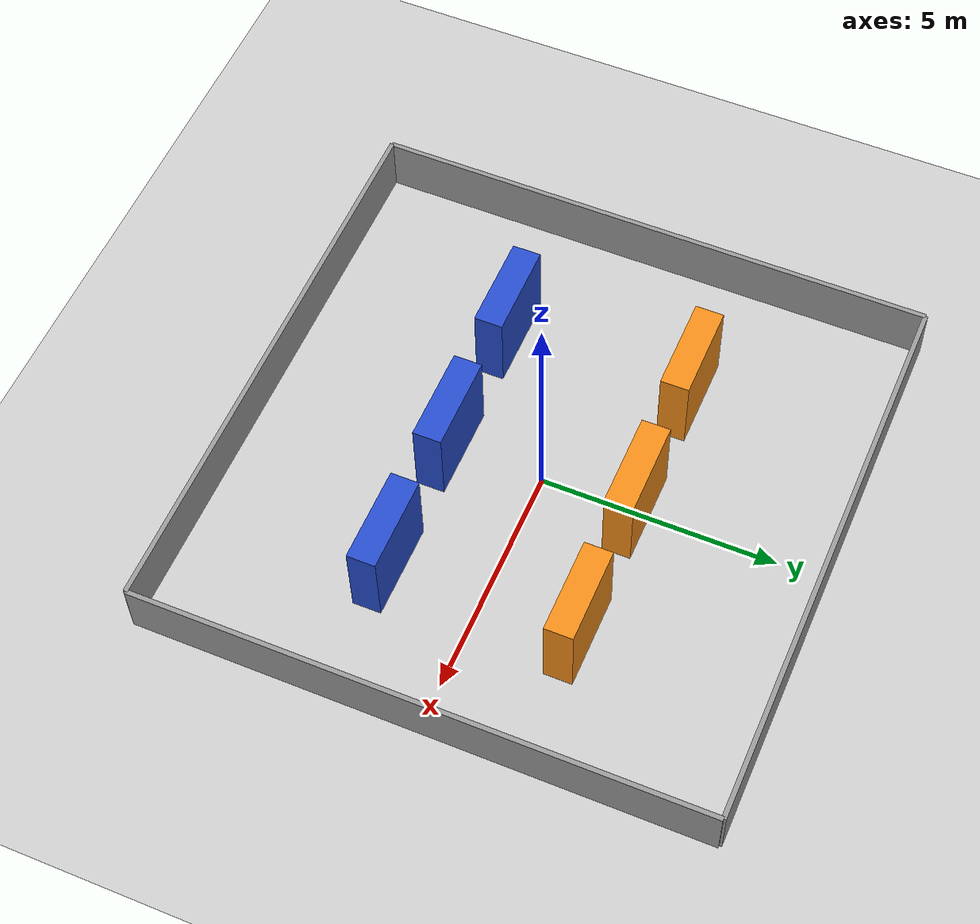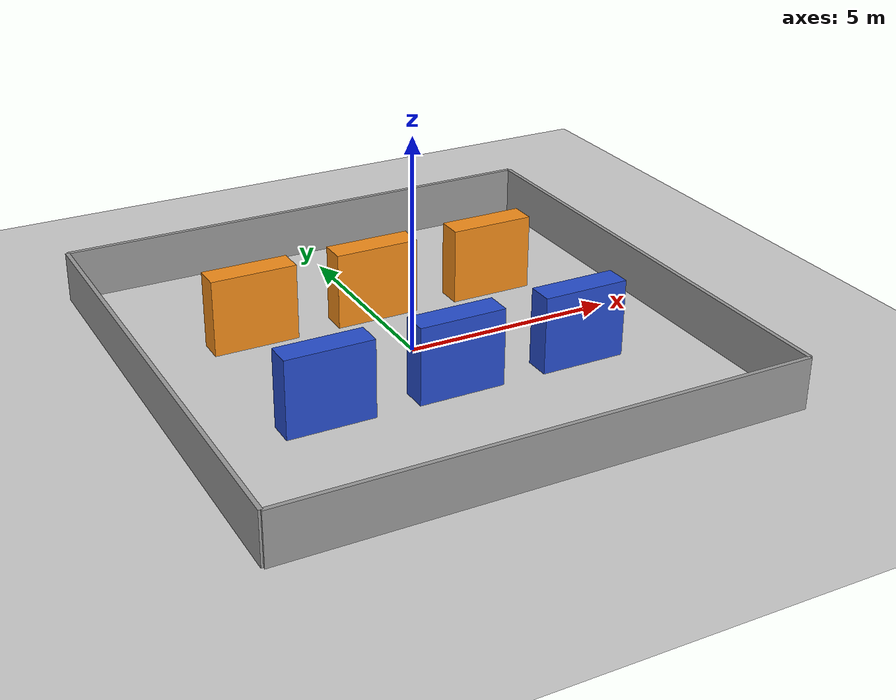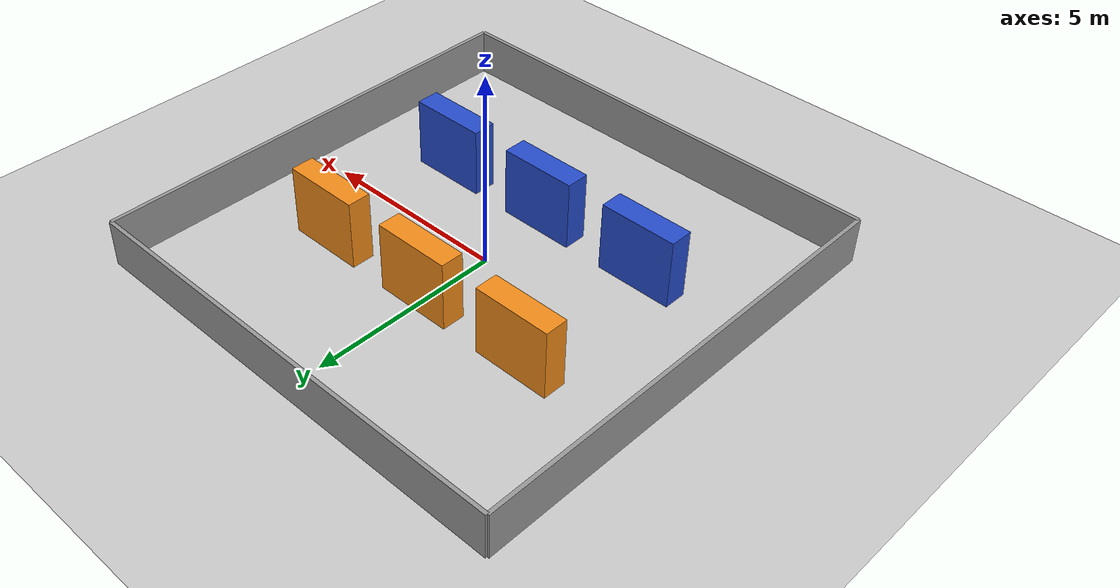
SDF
<?xml version="1.0"?>
<sdf version="1.6">
  <world name="warehouse_stage1">
    <include>
      <uri>model://ground_plane</uri>
    </include>
    <include>
      <uri>model://sun</uri>
    </include>

    <physics type="ode">
      <max_step_size>0.001</max_step_size>
      <real_time_factor>1.0</real_time_factor>
      <real_time_update_rate>1000</real_time_update_rate>
    </physics>

    <!-- 仓库外墙：一圈 0.1m 厚、1.2m 高的静态箱体 -->
    <model name="walls">
      <static>true</static>
      <link name="wall_north">
        <pose>0 6 0.6 0 0 0</pose>
        <collision name="c"><geometry><box><size>12.0 0.1 1.2</size></box></geometry></collision>
        <visual name="v"><geometry><box><size>12.0 0.1 1.2</size></box></geometry>
          <material><script><name>Gazebo/Grey</name></script></material></visual>
      </link>
      <link name="wall_south">
        <pose>0 -6 0.6 0 0 0</pose>
        <collision name="c"><geometry><box><size>12.0 0.1 1.2</size></box></geometry></collision>
        <visual name="v"><geometry><box><size>12.0 0.1 1.2</size></box></geometry>
          <material><script><name>Gazebo/Grey</name></script></material></visual>
      </link>
      <link name="wall_east">
        <pose>6 0 0.6 0 0 0</pose>
        <collision name="c"><geometry><box><size>0.1 12.0 1.2</size></box></geometry></collision>
        <visual name="v"><geometry><box><size>0.1 12.0 1.2</size></box></geometry>
          <material><script><name>Gazebo/Grey</name></script></material></visual>
      </link>
      <link name="wall_west">
        <pose>-6 0 0.6 0 0 0</pose>
        <collision name="c"><geometry><box><size>0.1 12.0 1.2</size></box></geometry></collision>
        <visual name="v"><geometry><box><size>0.1 12.0 1.2</size></box></geometry>
          <material><script><name>Gazebo/Grey</name></script></material></visual>
      </link>
    </model>

    <!-- 两排货架，中间留 1.2m 通道供小车通过 -->
    <model name="shelf_row_a">
      <static>true</static>
      <link name="shelf_1">
        <pose>-3.0 2.0 0.9 0 0 0</pose>
        <collision name="c"><geometry><box><size>2.0 0.6 1.8</size></box></geometry></collision>
        <visual name="v"><geometry><box><size>2.0 0.6 1.8</size></box></geometry>
          <material><script><name>Gazebo/Orange</name></script></material></visual>
      </link>
      <link name="shelf_2">
        <pose>0.0 2.0 0.9 0 0 0</pose>
        <collision name="c"><geometry><box><size>2.0 0.6 1.8</size></box></geometry></collision>
        <visual name="v"><geometry><box><size>2.0 0.6 1.8</size></box></geometry>
          <material><script><name>Gazebo/Orange</name></script></material></visual>
      </link>
      <link name="shelf_3">
        <pose>3.0 2.0 0.9 0 0 0</pose>
        <collision name="c"><geometry><box><size>2.0 0.6 1.8</size></box></geometry></collision>
        <visual name="v"><geometry><box><size>2.0 0.6 1.8</size></box></geometry>
          <material><script><name>Gazebo/Orange</name></script></material></visual>
      </link>
    </model>

    <model name="shelf_row_b">
      <static>true</static>
      <link name="shelf_1">
        <pose>-3.0 -2.0 0.9 0 0 0</pose>
        <collision name="c"><geometry><box><size>2.0 0.6 1.8</size></box></geometry></collision>
        <visual name="v"><geometry><box><size>2.0 0.6 1.8</size></box></geometry>
          <material><script><name>Gazebo/Blue</name></script></material></visual>
      </link>
      <link name="shelf_2">
        <pose>0.0 -2.0 0.9 0 0 0</pose>
        <collision name="c"><geometry><box><size>2.0 0.6 1.8</size></box></geometry></collision>
        <visual name="v"><geometry><box><size>2.0 0.6 1.8</size></box></geometry>
          <material><script><name>Gazebo/Blue</name></script></material></visual>
      </link>
      <link name="shelf_3">
        <pose>3.0 -2.0 0.9 0 0 0</pose>
        <collision name="c"><geometry><box><size>2.0 0.6 1.8</size></box></geometry></collision>
        <visual name="v"><geometry><box><size>2.0 0.6 1.8</size></box></geometry>
          <material><script><name>Gazebo/Blue</name></script></material></visual>
      </link>
    </model>
  </world>
</sdf>
